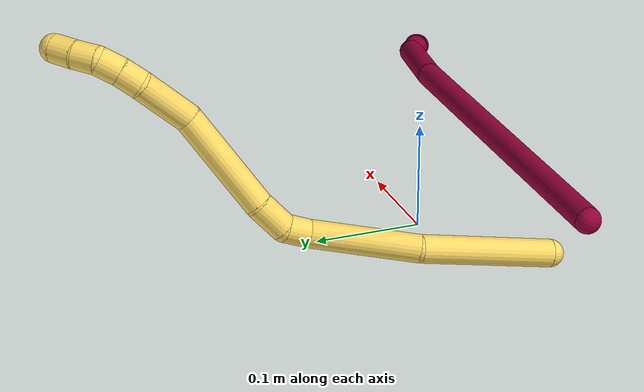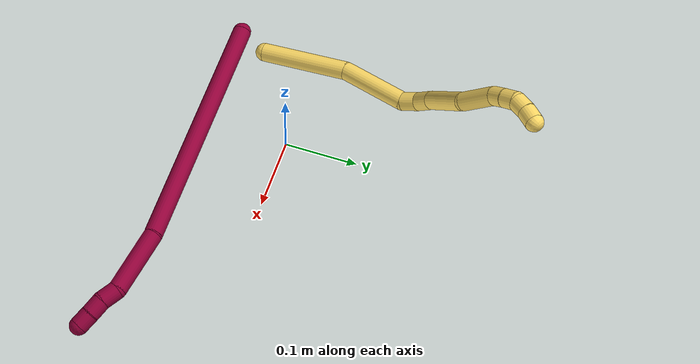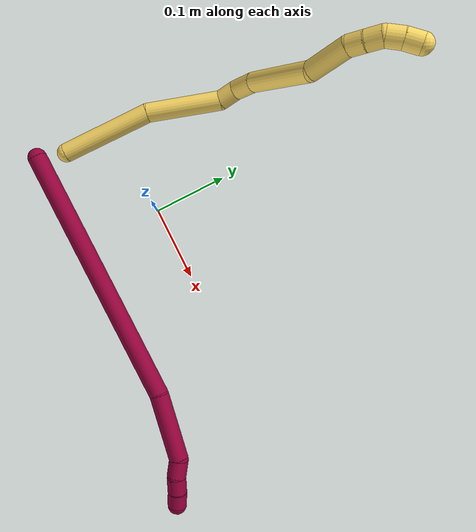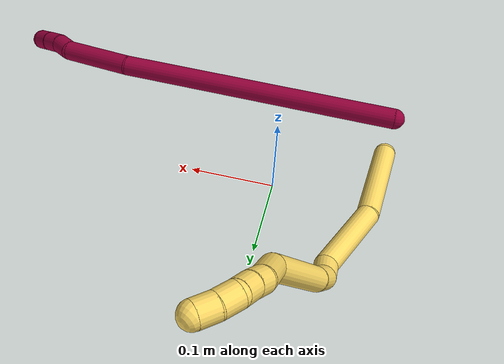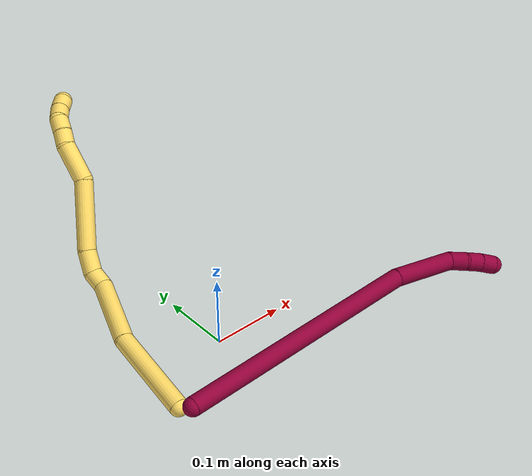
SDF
<sdf version="1.7">
 <world name="default">
  <model name="5">
   <static>0</static>
   <link name="5">
    <collision name="collision-cylinder-e_1_1_4">
     <pose>0.009435 0.023942 0.055717 -0.405855 0.15434 -0.031817</pose>
     <geometry><cylinder><radius>0.0125</radius><length>0.122745</length></cylinder></geometry>
     <surface>
      <friction><ode><mu>1.16</mu><mu2>1.16</mu2><slip1>0</slip1><slip2>0</slip2></ode></friction>
      <contact><ode><kp>1e+06</kp><kd>1</kd><max_vel>0</max_vel><min_depth>0.001</min_depth></ode></contact>
     </surface>
    </collision>
    <visual name="visual-cylinder-e_1_1_4">
     <pose>0.009435 0.023942 0.055717 -0.405855 0.15434 -0.031817</pose>
     <geometry><cylinder><radius>0.0125</radius><length>0.122745</length></cylinder></geometry>
     <material><ambient>1 0.858824 0.4 1</ambient></material>
    </visual>
    <collision name="collision-cylinder-e_2_4_5">
     <pose>0.017381 0.057391 0.159003 -0.197257 -0.030679 0.003036</pose>
     <geometry><cylinder><radius>0.0125</radius><length>0.097066</length></cylinder></geometry>
     <surface>
      <friction><ode><mu>1.16</mu><mu2>1.16</mu2><slip1>0</slip1><slip2>0</slip2></ode></friction>
      <contact><ode><kp>1e+06</kp><kd>1</kd><max_vel>0</max_vel><min_depth>0.001</min_depth></ode></contact>
     </surface>
    </collision>
    <visual name="visual-cylinder-e_2_4_5">
     <pose>0.017381 0.057391 0.159003 -0.197257 -0.030679 0.003036</pose>
     <geometry><cylinder><radius>0.0125</radius><length>0.097066</length></cylinder></geometry>
     <material><ambient>1 0.858824 0.4 1</ambient></material>
    </visual>
    <collision name="collision-cylinder-e_3_5_6">
     <pose>0.016541 0.073765 0.21614 -0.622535 0.05501 -0.017702</pose>
     <geometry><cylinder><radius>0.0125</radius><length>0.023589</length></cylinder></geometry>
     <surface>
      <friction><ode><mu>1.16</mu><mu2>1.16</mu2><slip1>0</slip1><slip2>0</slip2></ode></friction>
      <contact><ode><kp>1e+06</kp><kd>1</kd><max_vel>0</max_vel><min_depth>0.001</min_depth></ode></contact>
     </surface>
    </collision>
    <visual name="visual-cylinder-e_3_5_6">
     <pose>0.016541 0.073765 0.21614 -0.622535 0.05501 -0.017702</pose>
     <geometry><cylinder><radius>0.0125</radius><length>0.023589</length></cylinder></geometry>
     <material><ambient>1 0.858824 0.4 1</ambient></material>
    </visual>
    <collision name="collision-cylinder-e_4_6_7">
     <pose>0.010823 0.089959 0.235953 -0.738487 -0.430673 0.16889</pose>
     <geometry><cylinder><radius>0.0125</radius><length>0.030496</length></cylinder></geometry>
     <surface>
      <friction><ode><mu>1.16</mu><mu2>1.16</mu2><slip1>0</slip1><slip2>0</slip2></ode></friction>
      <contact><ode><kp>1e+06</kp><kd>1</kd><max_vel>0</max_vel><min_depth>0.001</min_depth></ode></contact>
     </surface>
    </collision>
    <visual name="visual-cylinder-e_4_6_7">
     <pose>0.010823 0.089959 0.235953 -0.738487 -0.430673 0.16889</pose>
     <geometry><cylinder><radius>0.0125</radius><length>0.030496</length></cylinder></geometry>
     <material><ambient>1 0.858824 0.4 1</ambient></material>
    </visual>
    <collision name="collision-cylinder-e_5_7_8">
     <pose>-0.023677 0.122738 0.275561 -0.67396 -0.642662 0.232186</pose>
     <geometry><cylinder><radius>0.0125</radius><length>0.093886</length></cylinder></geometry>
     <surface>
      <friction><ode><mu>1.16</mu><mu2>1.16</mu2><slip1>0</slip1><slip2>0</slip2></ode></friction>
      <contact><ode><kp>1e+06</kp><kd>1</kd><max_vel>0</max_vel><min_depth>0.001</min_depth></ode></contact>
     </surface>
    </collision>
    <visual name="visual-cylinder-e_5_7_8">
     <pose>-0.023677 0.122738 0.275561 -0.67396 -0.642662 0.232186</pose>
     <geometry><cylinder><radius>0.0125</radius><length>0.093886</length></cylinder></geometry>
     <material><ambient>1 0.858824 0.4 1</ambient></material>
    </visual>
    <collision name="collision-cylinder-e_6_8_9">
     <pose>-0.057669 0.164398 0.322493 -0.803211 -0.227523 0.096969</pose>
     <geometry><cylinder><radius>0.0125</radius><length>0.051944</length></cylinder></geometry>
     <surface>
      <friction><ode><mu>1.16</mu><mu2>1.16</mu2><slip1>0</slip1><slip2>0</slip2></ode></friction>
      <contact><ode><kp>1e+06</kp><kd>1</kd><max_vel>0</max_vel><min_depth>0.001</min_depth></ode></contact>
     </surface>
    </collision>
    <visual name="visual-cylinder-e_6_8_9">
     <pose>-0.057669 0.164398 0.322493 -0.803211 -0.227523 0.096969</pose>
     <geometry><cylinder><radius>0.0125</radius><length>0.051944</length></cylinder></geometry>
     <material><ambient>1 0.858824 0.4 1</ambient></material>
    </visual>
    <collision name="collision-cylinder-e_7_9_10">
     <pose>-0.067017 0.187272 0.348328 -0.514019 -0.35228 0.093488</pose>
     <geometry><cylinder><radius>0.0125</radius><length>0.020226</length></cylinder></geometry>
     <surface>
      <friction><ode><mu>1.16</mu><mu2>1.16</mu2><slip1>0</slip1><slip2>0</slip2></ode></friction>
      <contact><ode><kp>1e+06</kp><kd>1</kd><max_vel>0</max_vel><min_depth>0.001</min_depth></ode></contact>
     </surface>
    </collision>
    <visual name="visual-cylinder-e_7_9_10">
     <pose>-0.067017 0.187272 0.348328 -0.514019 -0.35228 0.093488</pose>
     <geometry><cylinder><radius>0.0125</radius><length>0.020226</length></cylinder></geometry>
     <material><ambient>1 0.858824 0.4 1</ambient></material>
    </visual>
    <collision name="collision-cylinder-e_8_10_11">
     <pose>-0.073149 0.196185 0.365265 -0.455339 -0.267184 0.062254</pose>
     <geometry><cylinder><radius>0.0125</radius><length>0.020021</length></cylinder></geometry>
     <surface>
      <friction><ode><mu>1.16</mu><mu2>1.16</mu2><slip1>0</slip1><slip2>0</slip2></ode></friction>
      <contact><ode><kp>1e+06</kp><kd>1</kd><max_vel>0</max_vel><min_depth>0.001</min_depth></ode></contact>
     </surface>
    </collision>
    <visual name="visual-cylinder-e_8_10_11">
     <pose>-0.073149 0.196185 0.365265 -0.455339 -0.267184 0.062254</pose>
     <geometry><cylinder><radius>0.0125</radius><length>0.020021</length></cylinder></geometry>
     <material><ambient>1 0.858824 0.4 1</ambient></material>
    </visual>
    <collision name="collision-cylinder-e_9_11_12">
     <pose>-0.078274 0.200201 0.383634 0.023782 -0.250499 -0.002994</pose>
     <geometry><cylinder><radius>0.0125</radius><length>0.020024</length></cylinder></geometry>
     <surface>
      <friction><ode><mu>1.16</mu><mu2>1.16</mu2><slip1>0</slip1><slip2>0</slip2></ode></friction>
      <contact><ode><kp>1e+06</kp><kd>1</kd><max_vel>0</max_vel><min_depth>0.001</min_depth></ode></contact>
     </surface>
    </collision>
    <visual name="visual-cylinder-e_9_11_12">
     <pose>-0.078274 0.200201 0.383634 0.023782 -0.250499 -0.002994</pose>
     <geometry><cylinder><radius>0.0125</radius><length>0.020024</length></cylinder></geometry>
     <material><ambient>1 0.858824 0.4 1</ambient></material>
    </visual>
    <collision name="collision-cylinder-e_10_12_2">
     <pose>-0.084152 0.198646 0.402644 0.141252 -0.34647 -0.024758</pose>
     <geometry><cylinder><radius>0.0125</radius><length>0.020003</length></cylinder></geometry>
     <surface>
      <friction><ode><mu>1.16</mu><mu2>1.16</mu2><slip1>0</slip1><slip2>0</slip2></ode></friction>
      <contact><ode><kp>1e+06</kp><kd>1</kd><max_vel>0</max_vel><min_depth>0.001</min_depth></ode></contact>
     </surface>
    </collision>
    <visual name="visual-cylinder-e_10_12_2">
     <pose>-0.084152 0.198646 0.402644 0.141252 -0.34647 -0.024758</pose>
     <geometry><cylinder><radius>0.0125</radius><length>0.020003</length></cylinder></geometry>
     <material><ambient>1 0.858824 0.4 1</ambient></material>
    </visual>
    <collision name="collision-sphere-2">
     <pose>-0.087549 0.197321 0.411958 0 -0 0</pose>
     <geometry><sphere><radius>0.0125</radius></sphere></geometry>
     <surface>
      <friction><ode><mu>1.16</mu><mu2>1.16</mu2><slip1>0</slip1><slip2>0</slip2></ode></friction>
      <contact><ode><kp>1e+06</kp><kd>1</kd><max_vel>0</max_vel><min_depth>0.001</min_depth></ode></contact>
     </surface>
    </collision>
    <visual name="visual-sphere-2">
     <pose>-0.087549 0.197321 0.411958 0 -0 0</pose>
     <geometry><sphere><radius>0.0125</radius></sphere></geometry>
     <material><ambient>1 0.858824 0.4 1</ambient></material>
    </visual>
    <collision name="collision-sphere-12">
     <pose>-0.080756 0.19997 0.393331 0 -0 0</pose>
     <geometry><sphere><radius>0.0125</radius></sphere></geometry>
     <surface>
      <friction><ode><mu>1.16</mu><mu2>1.16</mu2><slip1>0</slip1><slip2>0</slip2></ode></friction>
      <contact><ode><kp>1e+06</kp><kd>1</kd><max_vel>0</max_vel><min_depth>0.001</min_depth></ode></contact>
     </surface>
    </collision>
    <visual name="visual-sphere-12">
     <pose>-0.080756 0.19997 0.393331 0 -0 0</pose>
     <geometry><sphere><radius>0.0125</radius></sphere></geometry>
     <material><ambient>1 0.858824 0.4 1</ambient></material>
    </visual>
    <collision name="collision-sphere-11">
     <pose>-0.075792 0.200431 0.373937 0 -0 0</pose>
     <geometry><sphere><radius>0.0125</radius></sphere></geometry>
     <surface>
      <friction><ode><mu>1.16</mu><mu2>1.16</mu2><slip1>0</slip1><slip2>0</slip2></ode></friction>
      <contact><ode><kp>1e+06</kp><kd>1</kd><max_vel>0</max_vel><min_depth>0.001</min_depth></ode></contact>
     </surface>
    </collision>
    <visual name="visual-sphere-11">
     <pose>-0.075792 0.200431 0.373937 0 -0 0</pose>
     <geometry><sphere><radius>0.0125</radius></sphere></geometry>
     <material><ambient>1 0.858824 0.4 1</ambient></material>
    </visual>
    <collision name="collision-sphere-10">
     <pose>-0.070506 0.191939 0.356593 0 -0 0</pose>
     <geometry><sphere><radius>0.0125</radius></sphere></geometry>
     <surface>
      <friction><ode><mu>1.16</mu><mu2>1.16</mu2><slip1>0</slip1><slip2>0</slip2></ode></friction>
      <contact><ode><kp>1e+06</kp><kd>1</kd><max_vel>0</max_vel><min_depth>0.001</min_depth></ode></contact>
     </surface>
    </collision>
    <visual name="visual-sphere-10">
     <pose>-0.070506 0.191939 0.356593 0 -0 0</pose>
     <geometry><sphere><radius>0.0125</radius></sphere></geometry>
     <material><ambient>1 0.858824 0.4 1</ambient></material>
    </visual>
    <collision name="collision-sphere-9">
     <pose>-0.063528 0.182605 0.340063 0 -0 0</pose>
     <geometry><sphere><radius>0.0125</radius></sphere></geometry>
     <surface>
      <friction><ode><mu>1.16</mu><mu2>1.16</mu2><slip1>0</slip1><slip2>0</slip2></ode></friction>
      <contact><ode><kp>1e+06</kp><kd>1</kd><max_vel>0</max_vel><min_depth>0.001</min_depth></ode></contact>
     </surface>
    </collision>
    <visual name="visual-sphere-9">
     <pose>-0.063528 0.182605 0.340063 0 -0 0</pose>
     <geometry><sphere><radius>0.0125</radius></sphere></geometry>
     <material><ambient>1 0.858824 0.4 1</ambient></material>
    </visual>
    <collision name="collision-sphere-4">
     <pose>0.018869 0.047884 0.111434 0 -0 0</pose>
     <geometry><sphere><radius>0.0125</radius></sphere></geometry>
     <surface>
      <friction><ode><mu>1.16</mu><mu2>1.16</mu2><slip1>0</slip1><slip2>0</slip2></ode></friction>
      <contact><ode><kp>1e+06</kp><kd>1</kd><max_vel>0</max_vel><min_depth>0.001</min_depth></ode></contact>
     </surface>
    </collision>
    <visual name="visual-sphere-4">
     <pose>0.018869 0.047884 0.111434 0 -0 0</pose>
     <geometry><sphere><radius>0.0125</radius></sphere></geometry>
     <material><ambient>1 0.858824 0.4 1</ambient></material>
    </visual>
    <collision name="collision-sphere-1">
     <geometry><sphere><radius>0.0125</radius></sphere></geometry>
     <surface>
      <friction><ode><mu>1.16</mu><mu2>1.16</mu2><slip1>0</slip1><slip2>0</slip2></ode></friction>
      <contact><ode><kp>1e+06</kp><kd>1</kd><max_vel>0</max_vel><min_depth>0.001</min_depth></ode></contact>
     </surface>
    </collision>
    <visual name="visual-sphere-1">
     <geometry><sphere><radius>0.0125</radius></sphere></geometry>
     <material><ambient>1 0.858824 0.4 1</ambient></material>
    </visual>
    <collision name="collision-sphere-8">
     <pose>-0.051811 0.14619 0.304923 0 -0 0</pose>
     <geometry><sphere><radius>0.0125</radius></sphere></geometry>
     <surface>
      <friction><ode><mu>1.16</mu><mu2>1.16</mu2><slip1>0</slip1><slip2>0</slip2></ode></friction>
      <contact><ode><kp>1e+06</kp><kd>1</kd><max_vel>0</max_vel><min_depth>0.001</min_depth></ode></contact>
     </surface>
    </collision>
    <visual name="visual-sphere-8">
     <pose>-0.051811 0.14619 0.304923 0 -0 0</pose>
     <geometry><sphere><radius>0.0125</radius></sphere></geometry>
     <material><ambient>1 0.858824 0.4 1</ambient></material>
    </visual>
    <collision name="collision-sphere-5">
     <pose>0.015892 0.066898 0.206572 0 -0 0</pose>
     <geometry><sphere><radius>0.0125</radius></sphere></geometry>
     <surface>
      <friction><ode><mu>1.16</mu><mu2>1.16</mu2><slip1>0</slip1><slip2>0</slip2></ode></friction>
      <contact><ode><kp>1e+06</kp><kd>1</kd><max_vel>0</max_vel><min_depth>0.001</min_depth></ode></contact>
     </surface>
    </collision>
    <visual name="visual-sphere-5">
     <pose>0.015892 0.066898 0.206572 0 -0 0</pose>
     <geometry><sphere><radius>0.0125</radius></sphere></geometry>
     <material><ambient>1 0.858824 0.4 1</ambient></material>
    </visual>
    <collision name="collision-sphere-6">
     <pose>0.017189 0.080632 0.225707 0 -0 0</pose>
     <geometry><sphere><radius>0.0125</radius></sphere></geometry>
     <surface>
      <friction><ode><mu>1.16</mu><mu2>1.16</mu2><slip1>0</slip1><slip2>0</slip2></ode></friction>
      <contact><ode><kp>1e+06</kp><kd>1</kd><max_vel>0</max_vel><min_depth>0.001</min_depth></ode></contact>
     </surface>
    </collision>
    <visual name="visual-sphere-6">
     <pose>0.017189 0.080632 0.225707 0 -0 0</pose>
     <geometry><sphere><radius>0.0125</radius></sphere></geometry>
     <material><ambient>1 0.858824 0.4 1</ambient></material>
    </visual>
    <collision name="collision-sphere-7">
     <pose>0.004458 0.099287 0.246199 0 -0 0</pose>
     <geometry><sphere><radius>0.0125</radius></sphere></geometry>
     <surface>
      <friction><ode><mu>1.16</mu><mu2>1.16</mu2><slip1>0</slip1><slip2>0</slip2></ode></friction>
      <contact><ode><kp>1e+06</kp><kd>1</kd><max_vel>0</max_vel><min_depth>0.001</min_depth></ode></contact>
     </surface>
    </collision>
    <visual name="visual-sphere-7">
     <pose>0.004458 0.099287 0.246199 0 -0 0</pose>
     <geometry><sphere><radius>0.0125</radius></sphere></geometry>
     <material><ambient>1 0.858824 0.4 1</ambient></material>
    </visual>
    <inertial>
     <pose>-0.015448 0.097508 0.214568 0 -0 0</pose>
     <mass>0.5</mass>
     <inertia>
      <ixx>0.000321</ixx>
      <ixy>0</ixy>
      <ixz>0</ixz>
      <iyy>0.000332</iyy>
      <iyz>0</iyz>
      <izz>-6.8e-05</izz>
     </inertia>
    </inertial>
   </link>
   <pose>-0.122483 -0.073287 0.017215 1.586 0.723885 2.69711</pose>
  </model>
  <model name="8">
   <static>0</static>
   <link name="8">
    <collision name="collision-cylinder-e_1_1_4">
     <pose>0.120125 -0.123468 -0.007028 1.62766 0.770866 0.811317</pose>
     <geometry><cylinder><radius>0.0125</radius><length>0.344811</length></cylinder></geometry>
     <surface>
      <friction><ode><mu>1.16</mu><mu2>1.16</mu2><slip1>0</slip1><slip2>0</slip2></ode></friction>
      <contact><ode><kp>1e+06</kp><kd>1</kd><max_vel>0</max_vel><min_depth>0.001</min_depth></ode></contact>
     </surface>
    </collision>
    <visual name="visual-cylinder-e_1_1_4">
     <pose>0.120125 -0.123468 -0.007028 1.62766 0.770866 0.811317</pose>
     <geometry><cylinder><radius>0.0125</radius><length>0.344811</length></cylinder></geometry>
     <material><ambient>0.584314 0 0.227451 1</ambient></material>
    </visual>
    <collision name="collision-cylinder-e_2_4_5">
     <pose>0.263486 -0.284449 -0.016391 1.63293 0.553721 0.587288</pose>
     <geometry><cylinder><radius>0.0125</radius><length>0.088378</length></cylinder></geometry>
     <surface>
      <friction><ode><mu>1.16</mu><mu2>1.16</mu2><slip1>0</slip1><slip2>0</slip2></ode></friction>
      <contact><ode><kp>1e+06</kp><kd>1</kd><max_vel>0</max_vel><min_depth>0.001</min_depth></ode></contact>
     </surface>
    </collision>
    <visual name="visual-cylinder-e_2_4_5">
     <pose>0.263486 -0.284449 -0.016391 1.63293 0.553721 0.587288</pose>
     <geometry><cylinder><radius>0.0125</radius><length>0.088378</length></cylinder></geometry>
     <material><ambient>0.584314 0 0.227451 1</ambient></material>
    </visual>
    <collision name="collision-cylinder-e_3_5_6">
     <pose>0.288442 -0.333798 -0.01781 1.49369 0.143801 0.133152</pose>
     <geometry><cylinder><radius>0.0125</radius><length>0.023989</length></cylinder></geometry>
     <surface>
      <friction><ode><mu>1.16</mu><mu2>1.16</mu2><slip1>0</slip1><slip2>0</slip2></ode></friction>
      <contact><ode><kp>1e+06</kp><kd>1</kd><max_vel>0</max_vel><min_depth>0.001</min_depth></ode></contact>
     </surface>
    </collision>
    <visual name="visual-cylinder-e_3_5_6">
     <pose>0.288442 -0.333798 -0.01781 1.49369 0.143801 0.133152</pose>
     <geometry><cylinder><radius>0.0125</radius><length>0.023989</length></cylinder></geometry>
     <material><ambient>0.584314 0 0.227451 1</ambient></material>
    </visual>
    <collision name="collision-cylinder-e_4_6_7">
     <pose>0.292805 -0.356166 -0.018491 1.72113 0.243259 0.282393</pose>
     <geometry><cylinder><radius>0.0125</radius><length>0.021952</length></cylinder></geometry>
     <surface>
      <friction><ode><mu>1.16</mu><mu2>1.16</mu2><slip1>0</slip1><slip2>0</slip2></ode></friction>
      <contact><ode><kp>1e+06</kp><kd>1</kd><max_vel>0</max_vel><min_depth>0.001</min_depth></ode></contact>
     </surface>
    </collision>
    <visual name="visual-cylinder-e_4_6_7">
     <pose>0.292805 -0.356166 -0.018491 1.72113 0.243259 0.282393</pose>
     <geometry><cylinder><radius>0.0125</radius><length>0.021952</length></cylinder></geometry>
     <material><ambient>0.584314 0 0.227451 1</ambient></material>
    </visual>
    <collision name="collision-cylinder-e_5_7_2">
     <pose>0.296988 -0.376839 -0.022011 1.75836 0.148076 0.178673</pose>
     <geometry><cylinder><radius>0.0125</radius><length>0.02087</length></cylinder></geometry>
     <surface>
      <friction><ode><mu>1.16</mu><mu2>1.16</mu2><slip1>0</slip1><slip2>0</slip2></ode></friction>
      <contact><ode><kp>1e+06</kp><kd>1</kd><max_vel>0</max_vel><min_depth>0.001</min_depth></ode></contact>
     </surface>
    </collision>
    <visual name="visual-cylinder-e_5_7_2">
     <pose>0.296988 -0.376839 -0.022011 1.75836 0.148076 0.178673</pose>
     <geometry><cylinder><radius>0.0125</radius><length>0.02087</length></cylinder></geometry>
     <material><ambient>0.584314 0 0.227451 1</ambient></material>
    </visual>
    <collision name="collision-sphere-2">
     <pose>0.298528 -0.386979 -0.023935 0 -0 0</pose>
     <geometry><sphere><radius>0.0125</radius></sphere></geometry>
     <surface>
      <friction><ode><mu>1.16</mu><mu2>1.16</mu2><slip1>0</slip1><slip2>0</slip2></ode></friction>
      <contact><ode><kp>1e+06</kp><kd>1</kd><max_vel>0</max_vel><min_depth>0.001</min_depth></ode></contact>
     </surface>
    </collision>
    <visual name="visual-sphere-2">
     <pose>0.298528 -0.386979 -0.023935 0 -0 0</pose>
     <geometry><sphere><radius>0.0125</radius></sphere></geometry>
     <material><ambient>0.584314 0 0.227451 1</ambient></material>
    </visual>
    <collision name="collision-sphere-7">
     <pose>0.295449 -0.366699 -0.020086 0 -0 0</pose>
     <geometry><sphere><radius>0.0125</radius></sphere></geometry>
     <surface>
      <friction><ode><mu>1.16</mu><mu2>1.16</mu2><slip1>0</slip1><slip2>0</slip2></ode></friction>
      <contact><ode><kp>1e+06</kp><kd>1</kd><max_vel>0</max_vel><min_depth>0.001</min_depth></ode></contact>
     </surface>
    </collision>
    <visual name="visual-sphere-7">
     <pose>0.295449 -0.366699 -0.020086 0 -0 0</pose>
     <geometry><sphere><radius>0.0125</radius></sphere></geometry>
     <material><ambient>0.584314 0 0.227451 1</ambient></material>
    </visual>
    <collision name="collision-sphere-6">
     <pose>0.290161 -0.345633 -0.016896 0 -0 0</pose>
     <geometry><sphere><radius>0.0125</radius></sphere></geometry>
     <surface>
      <friction><ode><mu>1.16</mu><mu2>1.16</mu2><slip1>0</slip1><slip2>0</slip2></ode></friction>
      <contact><ode><kp>1e+06</kp><kd>1</kd><max_vel>0</max_vel><min_depth>0.001</min_depth></ode></contact>
     </surface>
    </collision>
    <visual name="visual-sphere-6">
     <pose>0.290161 -0.345633 -0.016896 0 -0 0</pose>
     <geometry><sphere><radius>0.0125</radius></sphere></geometry>
     <material><ambient>0.584314 0 0.227451 1</ambient></material>
    </visual>
    <collision name="collision-sphere-5">
     <pose>0.286723 -0.321962 -0.018725 0 -0 0</pose>
     <geometry><sphere><radius>0.0125</radius></sphere></geometry>
     <surface>
      <friction><ode><mu>1.16</mu><mu2>1.16</mu2><slip1>0</slip1><slip2>0</slip2></ode></friction>
      <contact><ode><kp>1e+06</kp><kd>1</kd><max_vel>0</max_vel><min_depth>0.001</min_depth></ode></contact>
     </surface>
    </collision>
    <visual name="visual-sphere-5">
     <pose>0.286723 -0.321962 -0.018725 0 -0 0</pose>
     <geometry><sphere><radius>0.0125</radius></sphere></geometry>
     <material><ambient>0.584314 0 0.227451 1</ambient></material>
    </visual>
    <collision name="collision-sphere-1">
     <geometry><sphere><radius>0.0125</radius></sphere></geometry>
     <surface>
      <friction><ode><mu>1.16</mu><mu2>1.16</mu2><slip1>0</slip1><slip2>0</slip2></ode></friction>
      <contact><ode><kp>1e+06</kp><kd>1</kd><max_vel>0</max_vel><min_depth>0.001</min_depth></ode></contact>
     </surface>
    </collision>
    <visual name="visual-sphere-1">
     <geometry><sphere><radius>0.0125</radius></sphere></geometry>
     <material><ambient>0.584314 0 0.227451 1</ambient></material>
    </visual>
    <collision name="collision-sphere-4">
     <pose>0.240249 -0.246936 -0.014057 0 -0 0</pose>
     <geometry><sphere><radius>0.0125</radius></sphere></geometry>
     <surface>
      <friction><ode><mu>1.16</mu><mu2>1.16</mu2><slip1>0</slip1><slip2>0</slip2></ode></friction>
      <contact><ode><kp>1e+06</kp><kd>1</kd><max_vel>0</max_vel><min_depth>0.001</min_depth></ode></contact>
     </surface>
    </collision>
    <visual name="visual-sphere-4">
     <pose>0.240249 -0.246936 -0.014057 0 -0 0</pose>
     <geometry><sphere><radius>0.0125</radius></sphere></geometry>
     <material><ambient>0.584314 0 0.227451 1</ambient></material>
    </visual>
    <inertial>
     <pose>0.168504 -0.182806 -0.010329 0 -0 0</pose>
     <mass>0.5</mass>
     <inertia><ixx>0.00358</ixx><ixy>0</ixy><ixz>0</ixz><iyy>0.003394</iyy><iyz>0</iyz><izz>8.9e-05</izz></inertia>
    </inertial>
   </link>
   <pose>-0.125876 -0.107246 0.045061 0.274424 -0.359972 0.753226</pose>
  </model>
 </world>
</sdf>
